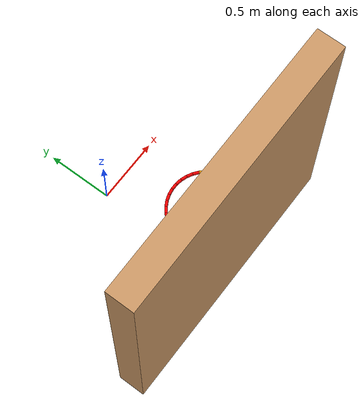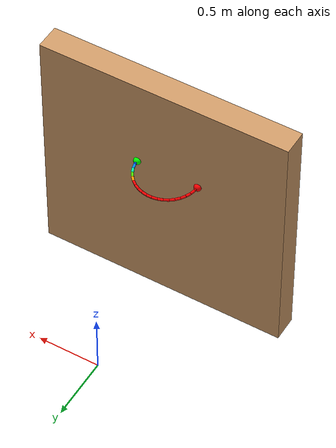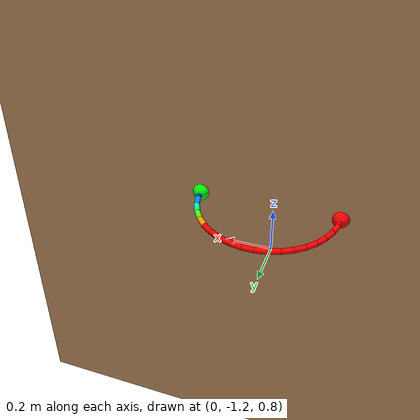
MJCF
<mujoco model="MuJoCo Model">
  <compiler angle="radian"/>
  <extension>
    <plugin plugin="mujoco.elasticity.cable">
      <instance name="compositewire0:">
        <config key="twist" value="1e7"/>
        <config key="bend" value="4e6"/>
        <config key="vmax" value="0.05"/>
      </instance>
    </plugin>
  </extension>
  <custom>
    <text name="composite_wire0:" data="rope_wire0:"/>
  </custom>
  <worldbody>
    <body name="wall" pos="0 -1 0">
      <geom size="1 0.1 1" pos="0 0 1" type="box" rgba="0.8 0.6 0.4 1"/>
      <body name="attachment_points" pos="-0.3 0.1 1.25">
        <body name="attachment_point_1">
          <geom size="0.03" rgba="1 0 0 1"/>
          <body name="wire0:B_first" pos="0 0 0" quat="0 0.735724 0.677282 0">
            <geom name="wire0:G0" size="0.01 0.0206448" pos="0.0206448 0 0" quat="0.707107 0 -0.707107 0" type="capsule" condim="1" friction="0.7" rgba="1 0 0 1"/>
            <site name="wire0:S_first" pos="0 0 0" group="3"/>
            <plugin instance="compositewire0:"/>
            <body name="wire0:B_1" pos="0.0412897 0 0" quat="0.996584 0 0 0.0825793">
              <joint name="wire0:J_1" pos="0 0 0" type="ball" group="3" actuatorfrclimited="false" damping="1"/>
              <geom name="wire0:G1" size="0.01 0.0206448" pos="0.0206448 0 0" quat="0.707107 0 -0.707107 0" type="capsule" condim="1" friction="0.7" rgba="1 0 0 1"/>
              <plugin instance="compositewire0:"/>
              <body name="wire0:B_2" pos="0.0412897 0 0" quat="0.996584 0 0 0.0825793">
                <joint name="wire0:J_2" pos="0 0 0" type="ball" group="3" actuatorfrclimited="false" damping="1"/>
                <geom name="wire0:G2" size="0.01 0.0206448" pos="0.0206448 0 0" quat="0.707107 0 -0.707107 0" type="capsule" condim="1" friction="0.7" rgba="1 0 0 1"/>
                <plugin instance="compositewire0:"/>
                <body name="wire0:B_3" pos="0.0412897 0 0" quat="0.996584 0 0 0.0825794">
                  <joint name="wire0:J_3" pos="0 0 0" type="ball" group="3" actuatorfrclimited="false" damping="1"/>
                  <geom name="wire0:G3" size="0.01 0.0206448" pos="0.0206448 0 0" quat="0.707107 0 -0.707107 0" type="capsule" condim="1" friction="0.7" rgba="1 0 0 1"/>
                  <plugin instance="compositewire0:"/>
                  <body name="wire0:B_4" pos="0.0412897 0 0" quat="0.996584 0 0 0.0825793">
                    <joint name="wire0:J_4" pos="0 0 0" type="ball" group="3" actuatorfrclimited="false" damping="1"/>
                    <geom name="wire0:G4" size="0.01 0.0206448" pos="0.0206448 0 0" quat="0.707107 0 -0.707107 0" type="capsule" condim="1" friction="0.7" rgba="1 0 0 1"/>
                    <plugin instance="compositewire0:"/>
                    <body name="wire0:B_5" pos="0.0412897 0 0" quat="0.996584 0 0 0.0825793">
                      <joint name="wire0:J_5" pos="0 0 0" type="ball" group="3" actuatorfrclimited="false" damping="1"/>
                      <geom name="wire0:G5" size="0.01 0.0206448" pos="0.0206448 0 0" quat="0.707107 0 -0.707107 0" type="capsule" condim="1" friction="0.7" rgba="1 0 0 1"/>
                      <plugin instance="compositewire0:"/>
                      <body name="wire0:B_6" pos="0.0412897 0 0" quat="0.996584 0 0 0.0825794">
                        <joint name="wire0:J_6" pos="0 0 0" type="ball" group="3" actuatorfrclimited="false" damping="1"/>
                        <geom name="wire0:G6" size="0.01 0.0206448" pos="0.0206448 0 0" quat="0.707107 0 -0.707107 0" type="capsule" condim="1" friction="0.7" rgba="1 0 0 1"/>
                        <plugin instance="compositewire0:"/>
                        <body name="wire0:B_7" pos="0.0412897 0 0" quat="0.996584 0 0 0.0825793">
                          <joint name="wire0:J_7" pos="0 0 0" type="ball" group="3" actuatorfrclimited="false" damping="1"/>
                          <geom name="wire0:G7" size="0.01 0.0206448" pos="0.0206448 0 0" quat="0.707107 0 -0.707107 0" type="capsule" condim="1" friction="0.7" rgba="1 0 0 1"/>
                          <plugin instance="compositewire0:"/>
                          <body name="wire0:B_8" pos="0.0412897 0 0" quat="0.996584 0 0 0.0825795">
                            <joint name="wire0:J_8" pos="0 0 0" type="ball" group="3" actuatorfrclimited="false" damping="1"/>
                            <geom name="wire0:G8" size="0.01 0.0206448" pos="0.0206448 0 0" quat="0.707107 0 -0.707107 0" type="capsule" condim="1" friction="0.7" rgba="1 0 0 1"/>
                            <plugin instance="compositewire0:"/>
                            <body name="wire0:B_9" pos="0.0412897 0 0" quat="0.996585 0 0 0.0825792">
                              <joint name="wire0:J_9" pos="0 0 0" type="ball" group="3" actuatorfrclimited="false" damping="1"/>
                              <geom name="wire0:G9" size="0.01 0.0206448" pos="0.0206448 0 0" quat="0.707107 0 -0.707107 0" type="capsule" condim="1" friction="0.7" rgba="1 0 0 1"/>
                              <plugin instance="compositewire0:"/>
                              <body name="wire0:B_10" pos="0.0412897 0 0" quat="0.996585 0 0 0.0825792">
                                <joint name="wire0:J_10" pos="0 0 0" type="ball" group="3" actuatorfrclimited="false" damping="1"/>
                                <geom name="wire0:G10" size="0.01 0.0206448" pos="0.0206448 0 0" quat="0.707107 0 -0.707107 0" type="capsule" condim="1" friction="0.7" rgba="1 0 0 1"/>
                                <plugin instance="compositewire0:"/>
                                <body name="wire0:B_11" pos="0.0412897 0 0" quat="0.996584 0 0 0.0825796">
                                  <joint name="wire0:J_11" pos="0 0 0" type="ball" group="3" actuatorfrclimited="false" damping="1"/>
                                  <geom name="wire0:G11" size="0.01 0.0206448" pos="0.0206448 0 0" quat="0.707107 0 -0.707107 0" type="capsule" condim="1" friction="0.7" rgba="1 0 0 1"/>
                                  <plugin instance="compositewire0:"/>
                                  <body name="wire0:B_12" pos="0.0412896 0 0" quat="0.996585 0 0 0.0825791">
                                    <joint name="wire0:J_12" pos="0 0 0" type="ball" group="3" actuatorfrclimited="false" damping="1"/>
                                    <geom name="wire0:G12" size="0.01 0.0206448" pos="0.0206448 0 0" quat="0.707107 0 -0.707107 0" type="capsule" condim="1" friction="0.7" rgba="1 0 0 1"/>
                                    <plugin instance="compositewire0:"/>
                                    <body name="wire0:B_13" pos="0.0412897 0 0" quat="0.996584 0 0 0.0825795">
                                      <joint name="wire0:J_13" pos="0 0 0" type="ball" group="3" actuatorfrclimited="false" damping="1"/>
                                      <geom name="wire0:G13" size="0.01 0.0206448" pos="0.0206448 0 0" quat="0.707107 0 -0.707107 0" type="capsule" condim="1" friction="0.7" rgba="1 0 0 1"/>
                                      <plugin instance="compositewire0:"/>
                                      <body name="wire0:B_14" pos="0.0412897 0 0" quat="0.996584 0 0 0.0825796">
                                        <joint name="wire0:J_14" pos="0 0 0" type="ball" group="3" actuatorfrclimited="false" damping="1"/>
                                        <geom name="wire0:G14" size="0.01 0.0206448" pos="0.0206448 0 0" quat="0.707107 0 -0.707107 0" type="capsule" condim="1" friction="0.7" rgba="1 0.604668 0 1"/>
                                        <plugin instance="compositewire0:"/>
                                        <body name="wire0:B_15" pos="0.0412897 0 0" quat="0.996585 0 0 0.0825788">
                                          <joint name="wire0:J_15" pos="0 0 0" type="ball" group="3" actuatorfrclimited="false" damping="1"/>
                                          <geom name="wire0:G15" size="0.01 0.0206448" pos="0.0206448 0 0" quat="0.707107 0 -0.707107 0" type="capsule" condim="1" friction="0.7" rgba="0.307308 1 0 1"/>
                                          <plugin instance="compositewire0:"/>
                                          <body name="wire0:B_16" pos="0.0412897 0 0" quat="0.996584 0 0 0.0825798">
                                            <joint name="wire0:J_16" pos="0 0 0" type="ball" group="3" actuatorfrclimited="false" damping="1"/>
                                            <geom name="wire0:G16" size="0.01 0.0206448" pos="0.0206448 0 0" quat="0.707107 0 -0.707107 0" type="capsule" condim="1" friction="0.7" rgba="0 1 0.678544 1"/>
                                            <plugin instance="compositewire0:"/>
                                            <body name="wire0:B_17" pos="0.0412897 0 0" quat="0.996585 0 0 0.0825793">
                                              <joint name="wire0:J_17" pos="0 0 0" type="ball" group="3" actuatorfrclimited="false" damping="1"/>
                                              <geom name="wire0:G17" size="0.01 0.0206448" pos="0.0206448 0 0" quat="0.707107 0 -0.707107 0" type="capsule" condim="1" friction="0.7" rgba="0 0.551422 1 1"/>
                                              <plugin instance="compositewire0:"/>
                                              <body name="wire0:B_last" pos="0.0412897 0 0" quat="0.996585 0 0 0.0825792">
                                                <joint name="wire0:J_last" pos="0 0 0" type="ball" group="3" actuatorfrclimited="false" damping="1"/>
                                                <geom name="wire0:G18" size="0.01 0.0206448" pos="0.0206448 0 0" quat="0.707107 0 -0.707107 0" type="capsule" condim="1" friction="0.7" rgba="0 0.235536 1 1"/>
                                                <site name="wire0:S_last" pos="0.0412897 0 0" group="3"/>
                                                <plugin instance="compositewire0:"/>
                                              </body>
                                            </body>
                                          </body>
                                        </body>
                                      </body>
                                    </body>
                                  </body>
                                </body>
                              </body>
                            </body>
                          </body>
                        </body>
                      </body>
                    </body>
                  </body>
                </body>
              </body>
            </body>
          </body>
        </body>
        <body name="attachment_point_2" pos="0.5 0 0">
          <geom size="0.03" rgba="0 1 0 1"/>
        </body>
      </body>
    </body>
  </worldbody>
  <contact>
    <exclude body1="wire0:B_first" body2="wire0:B_1"/>
    <exclude body1="wire0:B_1" body2="wire0:B_2"/>
    <exclude body1="wire0:B_2" body2="wire0:B_3"/>
    <exclude body1="wire0:B_3" body2="wire0:B_4"/>
    <exclude body1="wire0:B_4" body2="wire0:B_5"/>
    <exclude body1="wire0:B_5" body2="wire0:B_6"/>
    <exclude body1="wire0:B_6" body2="wire0:B_7"/>
    <exclude body1="wire0:B_7" body2="wire0:B_8"/>
    <exclude body1="wire0:B_8" body2="wire0:B_9"/>
    <exclude body1="wire0:B_9" body2="wire0:B_10"/>
    <exclude body1="wire0:B_10" body2="wire0:B_11"/>
    <exclude body1="wire0:B_11" body2="wire0:B_12"/>
    <exclude body1="wire0:B_12" body2="wire0:B_13"/>
    <exclude body1="wire0:B_13" body2="wire0:B_14"/>
    <exclude body1="wire0:B_14" body2="wire0:B_15"/>
    <exclude body1="wire0:B_15" body2="wire0:B_16"/>
    <exclude body1="wire0:B_16" body2="wire0:B_17"/>
    <exclude body1="wire0:B_17" body2="wire0:B_last"/>
    <exclude body1="wire0:B_last" body2="attachment_point_2"/>
  </contact>
</mujoco>
